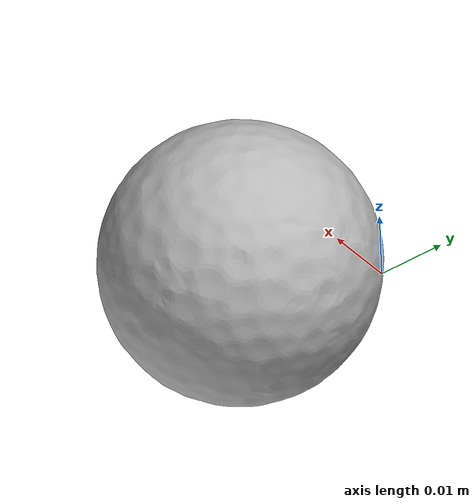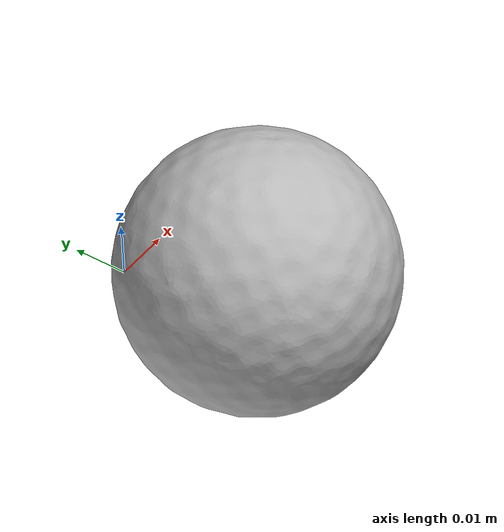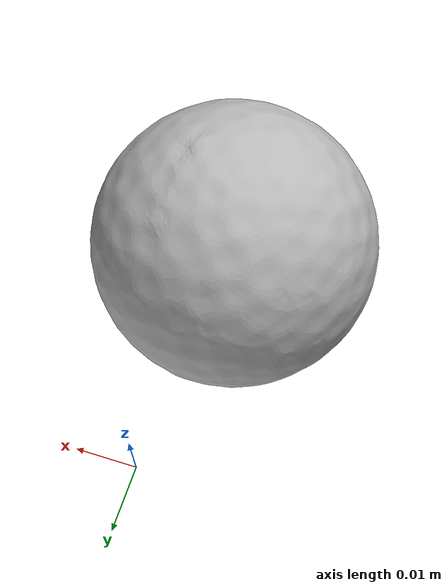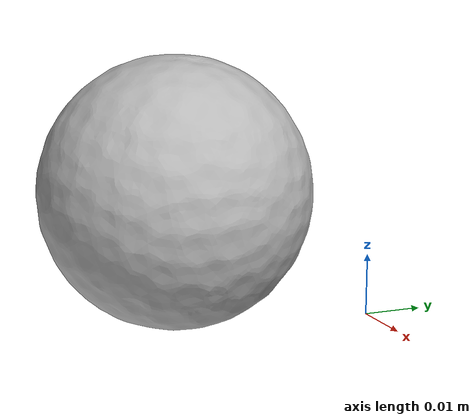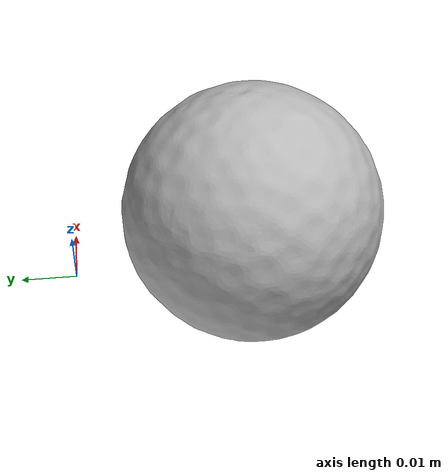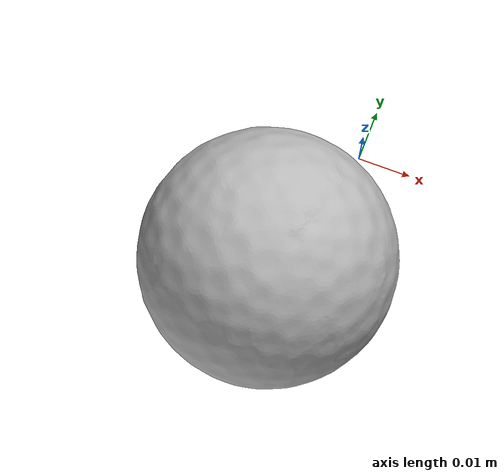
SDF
<?xml version='1.0'?>
<sdf version="1.4">
  <model name="golf_ball">
    <static>false</static>
    <link name="link">
      <inertial>
        <pose>-0.006528858552747082 -0.03041729713329846 0.020926530072584815 1.2624848084585896 -1.4760519281924218 -1.1435261510316612</pose>
        <mass>4.028006582467067e-05</mass>
        <inertia>
          <ixx>7.3017341992527e-09</ixx>
          <ixy>1.5939930196776784e-24</ixy>
          <ixz>-2.321344863756154e-25</ixz>
          <iyy>7.281135817609489e-09</iyy>
          <iyz>3.860823575029119e-25</iyz>
          <izz>7.275798810853505e-09</izz>
        </inertia>
      </inertial>
      <collision name="collision">
        <geometry>
          <mesh>
            <!-- Use a downsampled mesh for collisions -->
            <uri>model://058_golf_ball/google_16k/058_golf_ball.obj</uri>
            </mesh>
        </geometry>
        <surface>
          <friction>
            <ode>
              <mu>0.9</mu>
              <mu2>0.9</mu2>
            </ode>
          </friction>
          <contact>
            <ode>
              <kp>1000000000000.0</kp>
              <kd>1</kd>
              <min_depth>0.0001</min_depth>
              <max_vel>0.01</max_vel>
            </ode>
          </contact>
          <bounce>
            <restitution_coefficient>0.1</restitution_coefficient>
            <threshold>1000.0</threshold>
          </bounce>
        </surface>
      </collision>
      <visual name="visual">
        <geometry>
          <mesh>
            <uri>model://058_golf_ball/google_16k/058_golf_ball.dae</uri>
            </mesh>
        </geometry>
      </visual>
    </link>
  </model>
</sdf>
